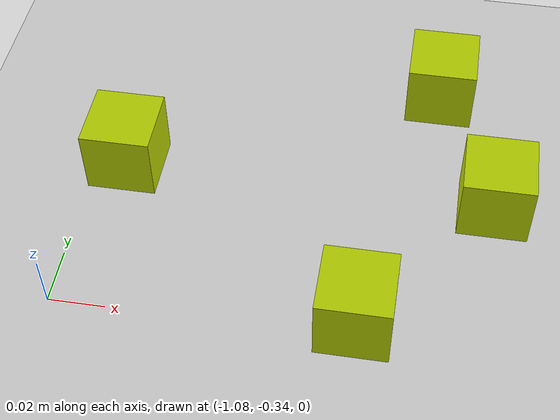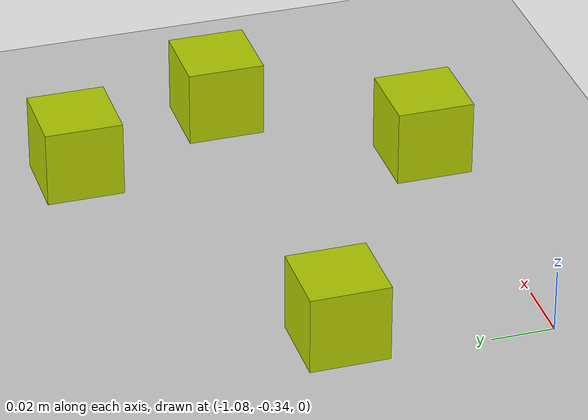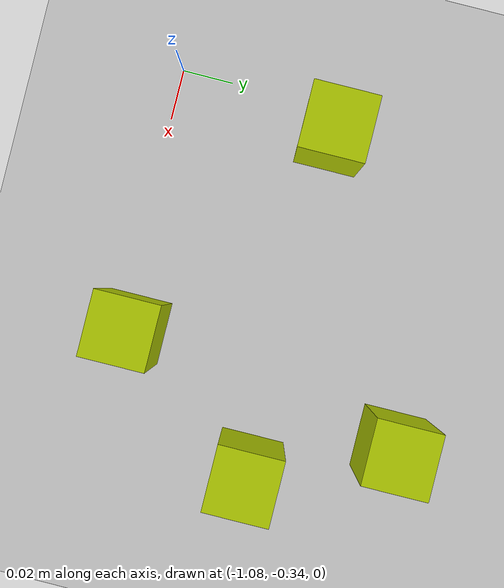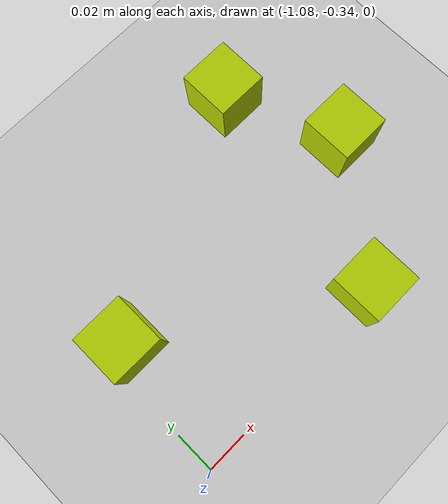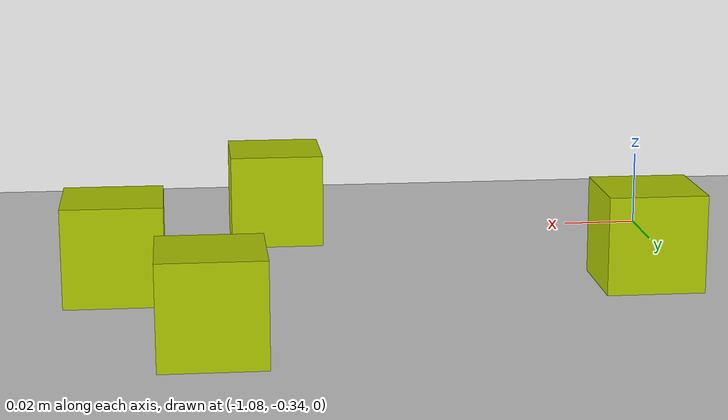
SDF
<sdf version="1.7">
 <world name="default">
  <model name="ground_plane">
   <static>1</static>
   <link name="link">
    <collision name="collision">
     <geometry><plane><normal>0 0 1</normal><size>100 100</size></plane></geometry>
     <surface>
      <contact><collide_bitmask>65535</collide_bitmask></contact>
      <friction><ode><mu>100</mu><mu2>50</mu2></ode></friction>
     </surface>
    </collision>
    <visual name="visual">
     <cast_shadows>0</cast_shadows>
     <geometry><plane><normal>0 0 1</normal><size>100 100</size></plane></geometry>
     <material>
      <script><uri>file://media/materials/scripts/gazebo.material</uri><name>Gazebo/Grey</name></script>
     </material>
    </visual>
   </link>
  </model>
  <model name="yellow_unit_box">
   <link name="link">
    <inertial>
     <mass>1</mass>
     <inertia>
      <ixx>0.166667</ixx>
      <ixy>0</ixy>
      <ixz>0</ixz>
      <iyy>0.166667</iyy>
      <iyz>0</iyz>
      <izz>0.166667</izz>
     </inertia>
    </inertial>
    <visual name="visual">
     <geometry><box><size>0.025 0.025 0.025</size></box></geometry>
     <material>
      <script><name>Gazebo/Grey</name><uri>file://media/materials/scripts/gazebo.material</uri></script>
      <shader type="pixel"><normal_map>__default__</normal_map></shader>
      <ambient>0.8 0.8 0 1</ambient>
      <diffuse>0.7 0.8 0 1</diffuse>
      <specular>0.01 0 0 1</specular>
      <emissive>0 0 0 1</emissive>
     </material>
    </visual>
    <collision name="collision">
     <geometry><box><size>0.025 0.025 0.025</size></box></geometry>
     <surface>
      <friction>
       <ode><mu>1</mu><mu2>1</mu2><fdir1>0 0 0</fdir1><slip1>0</slip1><slip2>0</slip2></ode>
       <torsional>
        <coefficient>1</coefficient>
        <patch_radius>0</patch_radius>
        <surface_radius>0</surface_radius>
        <use_patch_radius>1</use_patch_radius>
        <ode><slip>0</slip></ode>
       </torsional>
      </friction>
      <bounce><restitution_coefficient>0</restitution_coefficient><threshold>1e+06</threshold></bounce>
      <contact>
       <collide_without_contact>0</collide_without_contact>
       <collide_without_contact_bitmask>1</collide_without_contact_bitmask>
       <collide_bitmask>1</collide_bitmask>
       <ode>
        <soft_cfm>0</soft_cfm>
        <soft_erp>0.2</soft_erp>
        <kp>1e+13</kp>
        <kd>1</kd>
        <max_vel>0.01</max_vel>
        <min_depth>0</min_depth>
       </ode>
       <bullet>
        <split_impulse>1</split_impulse>
        <split_impulse_penetration_threshold>-0.01</split_impulse_penetration_threshold>
        <soft_cfm>0</soft_cfm>
        <soft_erp>0.2</soft_erp>
        <kp>1e+13</kp>
        <kd>1</kd>
       </bullet>
      </contact>
     </surface>
    </collision>
   </link>
   <static>0</static>
   <pose>-0.976266 -0.334224 0.012501 -1e-06 -0.000114 -0.000837</pose>
  </model>
  <model name="yellow_unit_box_clone">
   <link name="link">
    <inertial>
     <mass>1</mass>
     <inertia>
      <ixx>0.166667</ixx>
      <ixy>0</ixy>
      <ixz>0</ixz>
      <iyy>0.166667</iyy>
      <iyz>0</iyz>
      <izz>0.166667</izz>
     </inertia>
    </inertial>
    <visual name="visual">
     <geometry><box><size>0.025 0.025 0.025</size></box></geometry>
     <material>
      <script><name>Gazebo/Grey</name><uri>file://media/materials/scripts/gazebo.material</uri></script>
      <shader type="pixel"><normal_map>__default__</normal_map></shader>
      <ambient>0.8 0.8 0 1</ambient>
      <diffuse>0.7 0.8 0 1</diffuse>
      <specular>0.01 0 0 1</specular>
      <emissive>0 0 0 1</emissive>
     </material>
    </visual>
    <collision name="collision">
     <geometry><box><size>0.025 0.025 0.025</size></box></geometry>
     <surface>
      <friction>
       <ode><mu>1</mu><mu2>1</mu2><fdir1>0 0 0</fdir1><slip1>0</slip1><slip2>0</slip2></ode>
       <torsional>
        <coefficient>1</coefficient>
        <patch_radius>0</patch_radius>
        <surface_radius>0</surface_radius>
        <use_patch_radius>1</use_patch_radius>
        <ode><slip>0</slip></ode>
       </torsional>
      </friction>
      <bounce><restitution_coefficient>0</restitution_coefficient><threshold>1e+06</threshold></bounce>
      <contact>
       <collide_without_contact>0</collide_without_contact>
       <collide_without_contact_bitmask>1</collide_without_contact_bitmask>
       <collide_bitmask>1</collide_bitmask>
       <ode>
        <soft_cfm>0</soft_cfm>
        <soft_erp>0.2</soft_erp>
        <kp>1e+13</kp>
        <kd>1</kd>
        <max_vel>0.01</max_vel>
        <min_depth>0</min_depth>
       </ode>
       <bullet>
        <split_impulse>1</split_impulse>
        <split_impulse_penetration_threshold>-0.01</split_impulse_penetration_threshold>
        <soft_cfm>0</soft_cfm>
        <soft_erp>0.2</soft_erp>
        <kp>1e+13</kp>
        <kd>1</kd>
       </bullet>
      </contact>
     </surface>
    </collision>
   </link>
   <static>0</static>
   <pose>-0.956158 -0.224767 0.012501 -1e-06 -0.000114 -0.000837</pose>
  </model>
  <model name="yellow_unit_box_clone_0">
   <link name="link">
    <inertial>
     <mass>1</mass>
     <inertia>
      <ixx>0.166667</ixx>
      <ixy>0</ixy>
      <ixz>0</ixz>
      <iyy>0.166667</iyy>
      <iyz>0</iyz>
      <izz>0.166667</izz>
     </inertia>
    </inertial>
    <visual name="visual">
     <geometry><box><size>0.025 0.025 0.025</size></box></geometry>
     <material>
      <script><name>Gazebo/Grey</name><uri>file://media/materials/scripts/gazebo.material</uri></script>
      <shader type="pixel"><normal_map>__default__</normal_map></shader>
      <ambient>0.8 0.8 0 1</ambient>
      <diffuse>0.7 0.8 0 1</diffuse>
      <specular>0.01 0 0 1</specular>
      <emissive>0 0 0 1</emissive>
     </material>
    </visual>
    <collision name="collision">
     <geometry><box><size>0.025 0.025 0.025</size></box></geometry>
     <surface>
      <friction>
       <ode><mu>1</mu><mu2>1</mu2><fdir1>0 0 0</fdir1><slip1>0</slip1><slip2>0</slip2></ode>
       <torsional>
        <coefficient>1</coefficient>
        <patch_radius>0</patch_radius>
        <surface_radius>0</surface_radius>
        <use_patch_radius>1</use_patch_radius>
        <ode><slip>0</slip></ode>
       </torsional>
      </friction>
      <bounce><restitution_coefficient>0</restitution_coefficient><threshold>1e+06</threshold></bounce>
      <contact>
       <collide_without_contact>0</collide_without_contact>
       <collide_without_contact_bitmask>1</collide_without_contact_bitmask>
       <collide_bitmask>1</collide_bitmask>
       <ode>
        <soft_cfm>0</soft_cfm>
        <soft_erp>0.2</soft_erp>
        <kp>1e+13</kp>
        <kd>1</kd>
        <max_vel>0.01</max_vel>
        <min_depth>0</min_depth>
       </ode>
       <bullet>
        <split_impulse>1</split_impulse>
        <split_impulse_penetration_threshold>-0.01</split_impulse_penetration_threshold>
        <soft_cfm>0</soft_cfm>
        <soft_erp>0.2</soft_erp>
        <kp>1e+13</kp>
        <kd>1</kd>
       </bullet>
      </contact>
     </surface>
    </collision>
   </link>
   <static>0</static>
   <pose>-0.933192 -0.277702 0.012501 -1e-06 -0.000114 -0.000837</pose>
  </model>
  <model name="yellow_unit_box_clone_1">
   <link name="link">
    <inertial>
     <mass>1</mass>
     <inertia>
      <ixx>0.166667</ixx>
      <ixy>0</ixy>
      <ixz>0</ixz>
      <iyy>0.166667</iyy>
      <iyz>0</iyz>
      <izz>0.166667</izz>
     </inertia>
    </inertial>
    <visual name="visual">
     <geometry><box><size>0.025 0.025 0.025</size></box></geometry>
     <material>
      <script><name>Gazebo/Grey</name><uri>file://media/materials/scripts/gazebo.material</uri></script>
      <shader type="pixel"><normal_map>__default__</normal_map></shader>
      <ambient>0.8 0.8 0 1</ambient>
      <diffuse>0.7 0.8 0 1</diffuse>
      <specular>0.01 0 0 1</specular>
      <emissive>0 0 0 1</emissive>
     </material>
    </visual>
    <collision name="collision">
     <geometry><box><size>0.025 0.025 0.025</size></box></geometry>
     <surface>
      <friction>
       <ode><mu>1</mu><mu2>1</mu2><fdir1>0 0 0</fdir1><slip1>0</slip1><slip2>0</slip2></ode>
       <torsional>
        <coefficient>1</coefficient>
        <patch_radius>0</patch_radius>
        <surface_radius>0</surface_radius>
        <use_patch_radius>1</use_patch_radius>
        <ode><slip>0</slip></ode>
       </torsional>
      </friction>
      <bounce><restitution_coefficient>0</restitution_coefficient><threshold>1e+06</threshold></bounce>
      <contact>
       <collide_without_contact>0</collide_without_contact>
       <collide_without_contact_bitmask>1</collide_without_contact_bitmask>
       <collide_bitmask>1</collide_bitmask>
       <ode>
        <soft_cfm>0</soft_cfm>
        <soft_erp>0.2</soft_erp>
        <kp>1e+13</kp>
        <kd>1</kd>
        <max_vel>0.01</max_vel>
        <min_depth>0</min_depth>
       </ode>
       <bullet>
        <split_impulse>1</split_impulse>
        <split_impulse_penetration_threshold>-0.01</split_impulse_penetration_threshold>
        <soft_cfm>0</soft_cfm>
        <soft_erp>0.2</soft_erp>
        <kp>1e+13</kp>
        <kd>1</kd>
       </bullet>
      </contact>
     </surface>
    </collision>
   </link>
   <static>0</static>
   <pose>-1.06795 -0.276127 0.012501 -1e-06 -0.000114 -0.000837</pose>
  </model>
 </world>
</sdf>
